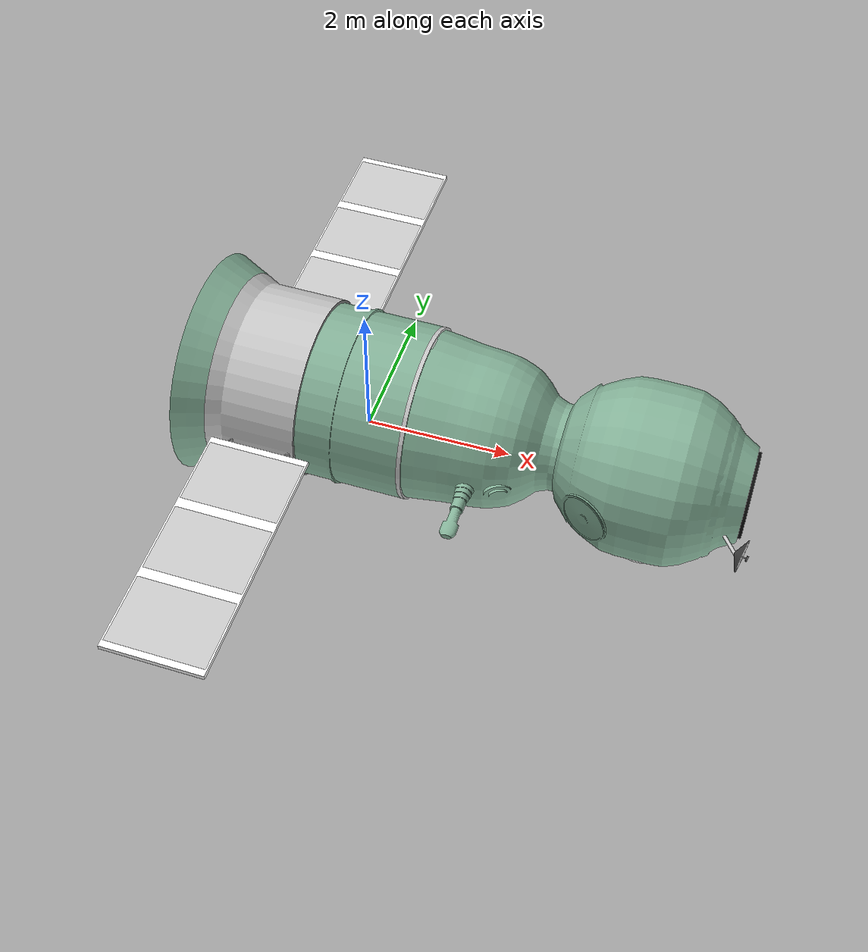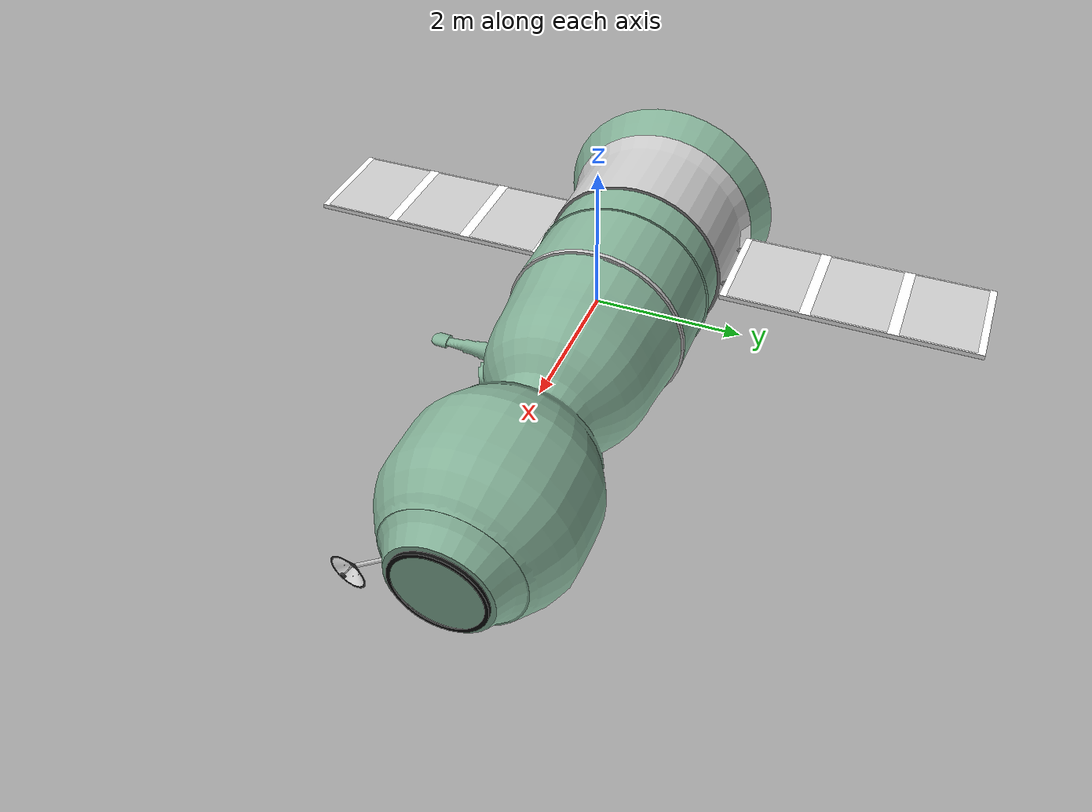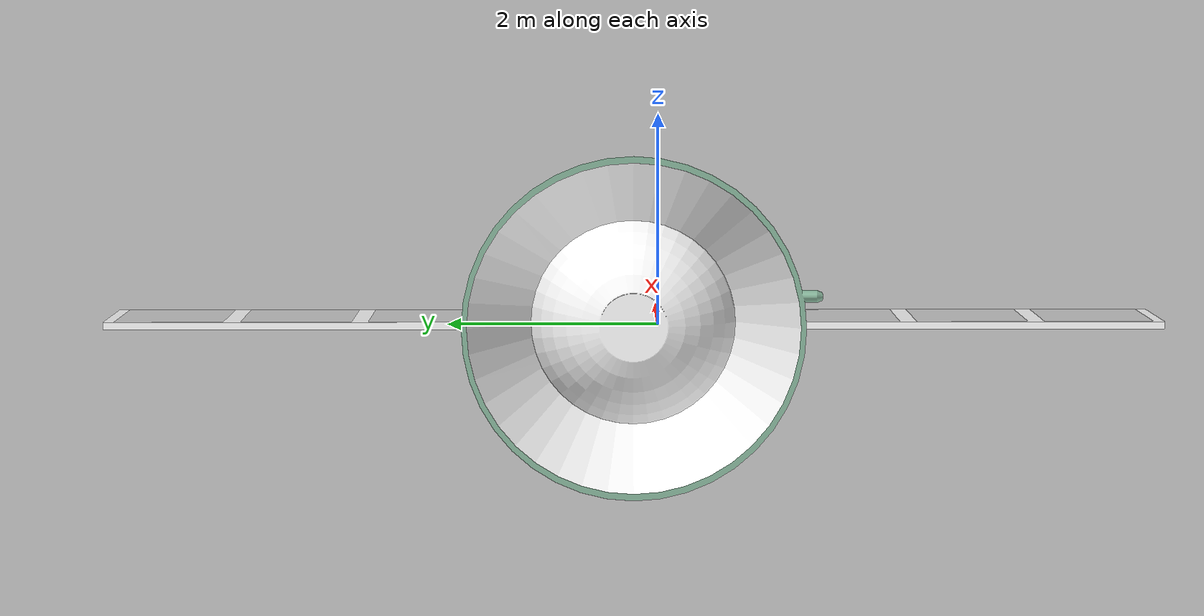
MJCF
<mujoco model="Soyuz_lowpoly">
  <default>
    <default class="visual">
      <geom group="2" type="mesh" contype="0" conaffinity="0" mass="0"/>
    </default>
    <default class="collision">
      <geom group="3" type="mesh" mass="0"/>
    </default>
  </default>
  <asset>
    <material name="anisotropic1SG" specular="0.5" shininess="0.348100067" rgba="0.800000 0.800000 0.800000 1.000000"/>
    <material name="apollohorns_bli1" specular="0.5" shininess="0.0" rgba="0.266667 0.266667 0.266667 1.000000"/>
    <material name="apollohorns_blin" specular="0.5" shininess="0.0" rgba="0.768627 0.529412 0.058824 1.000000"/>
    <material name="blinn11SG" specular="0.5" shininess="0.348100067" rgba="0.800000 0.800000 0.800000 1.000000"/>
    <material name="blinn13SG" specular="0.5" shininess="0.348100067" rgba="0.486275 0.498039 0.368627 1.000000"/>
    <material name="blinn14SG" specular="0.5" shininess="0.348100067" rgba="0.800000 0.800000 0.800000 1.000000"/>
    <material name="blinn2SG" specular="0.5" shininess="0.0" rgba="0.266667 0.266667 0.266667 1.000000"/>
    <material name="blinn3SG" specular="0.5" shininess="0.0" rgba="0.678431 0.678431 0.678431 1.000000"/>
    <material name="blinn4SG" specular="0.5" shininess="0.0" rgba="0.749020 0.749020 0.749020 1.000000"/>
    <material name="blinn5SG" specular="0.5" shininess="0.0" rgba="0.000000 0.000000 0.000000 1.000000"/>
    <material name="blinn6SG" specular="0.5" shininess="0.0" rgba="0.047059 0.047059 0.047059 1.000000"/>
    <material name="blinn7SG" specular="0.5" shininess="0.0" rgba="1.000000 1.000000 1.000000 1.000000"/>
    <material name="initialShadingGr" specular="0.5" shininess="0.348100067" rgba="0.498039 0.498039 0.498039 1.000000"/>
    <material name="lambert2SG" specular="0.5" shininess="0.348100067" rgba="0.529412 0.709804 0.607843 1.000000"/>
    <material name="lambert3SG" specular="0.5" shininess="0.348100067" rgba="1.000000 1.000000 1.000000 1.000000"/>
    <material name="lambert4SG" specular="0.5" shininess="0.348100067" rgba="0.800000 0.800000 0.800000 1.000000"/>
    <material name="lambert5SG" specular="0.5" shininess="0.348100067" rgba="0.800000 0.800000 0.800000 1.000000"/>
    <material name="lambert6SG" specular="0.5" shininess="0.348100067" rgba="0.800000 0.800000 0.800000 1.000000"/>
    <mesh file="Soyuz_lowpoly_0.obj"/>
    <mesh file="Soyuz_lowpoly_1.obj"/>
    <mesh file="Soyuz_lowpoly_2.obj"/>
    <mesh file="Soyuz_lowpoly_3.obj"/>
    <mesh file="Soyuz_lowpoly_4.obj"/>
    <mesh file="Soyuz_lowpoly_5.obj"/>
    <mesh file="Soyuz_lowpoly_6.obj"/>
    <mesh file="Soyuz_lowpoly_7.obj"/>
    <mesh file="Soyuz_lowpoly_8.obj"/>
    <mesh file="Soyuz_lowpoly_9.obj"/>
    <mesh file="Soyuz_lowpoly_10.obj"/>
  </asset>
  <worldbody>
    <body name="Soyuz_lowpoly">
      <geom mesh="Soyuz_lowpoly_0" material="anisotropic1SG" class="visual"/>
      <geom mesh="Soyuz_lowpoly_1" material="blinn6SG" class="visual"/>
      <geom mesh="Soyuz_lowpoly_2" material="blinn3SG" class="visual"/>
      <geom mesh="Soyuz_lowpoly_3" material="blinn7SG" class="visual"/>
      <geom mesh="Soyuz_lowpoly_4" material="blinn2SG" class="visual"/>
      <geom mesh="Soyuz_lowpoly_5" material="lambert4SG" class="visual"/>
      <geom mesh="Soyuz_lowpoly_6" material="initialShadingGr" class="visual"/>
      <geom mesh="Soyuz_lowpoly_7" material="lambert3SG" class="visual"/>
      <geom mesh="Soyuz_lowpoly_8" material="lambert6SG" class="visual"/>
      <geom mesh="Soyuz_lowpoly_9" material="lambert5SG" class="visual"/>
      <geom mesh="Soyuz_lowpoly_10" material="lambert2SG" class="visual"/>
      <geom mesh="Soyuz_lowpoly_0" class="collision"/>
      <geom mesh="Soyuz_lowpoly_1" class="collision"/>
      <geom mesh="Soyuz_lowpoly_2" class="collision"/>
      <geom mesh="Soyuz_lowpoly_3" class="collision"/>
      <geom mesh="Soyuz_lowpoly_4" class="collision"/>
      <geom mesh="Soyuz_lowpoly_5" class="collision"/>
      <geom mesh="Soyuz_lowpoly_6" class="collision"/>
      <geom mesh="Soyuz_lowpoly_7" class="collision"/>
      <geom mesh="Soyuz_lowpoly_8" class="collision"/>
      <geom mesh="Soyuz_lowpoly_9" class="collision"/>
      <geom mesh="Soyuz_lowpoly_10" class="collision"/>
    </body>
  </worldbody>
</mujoco>
